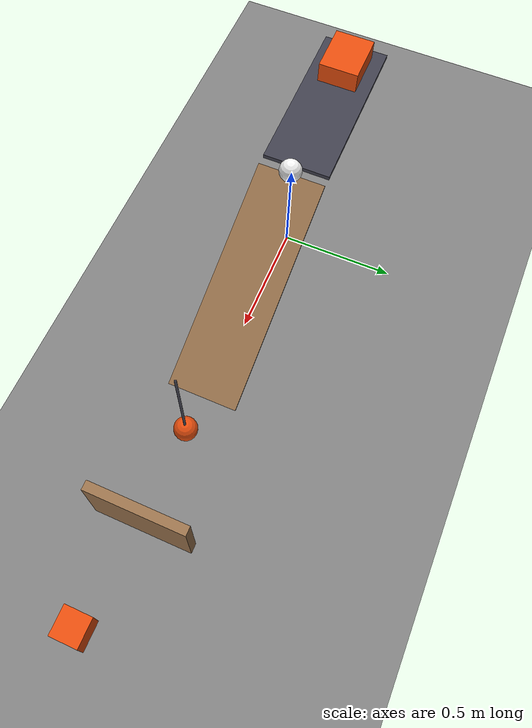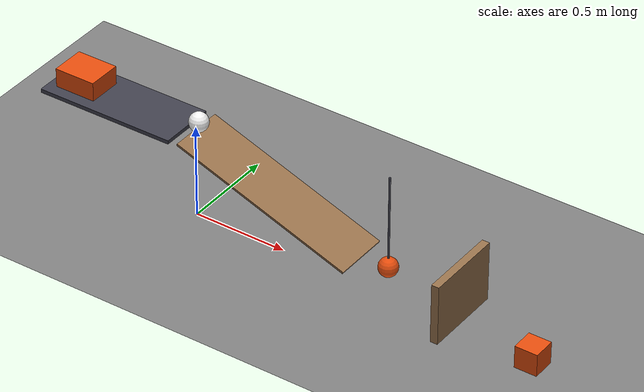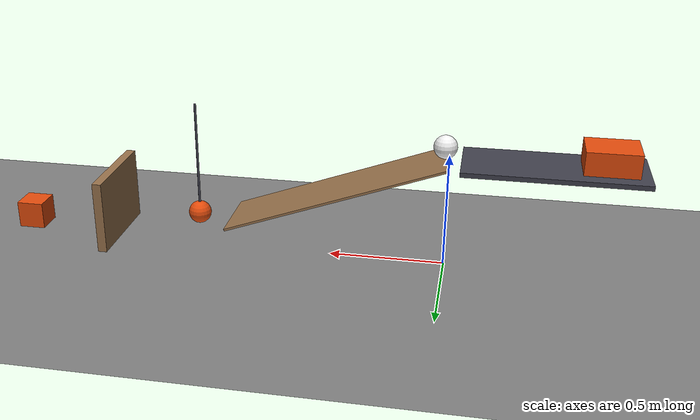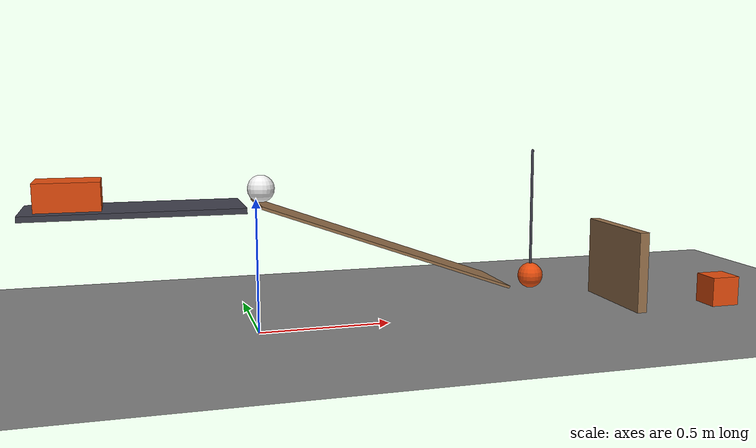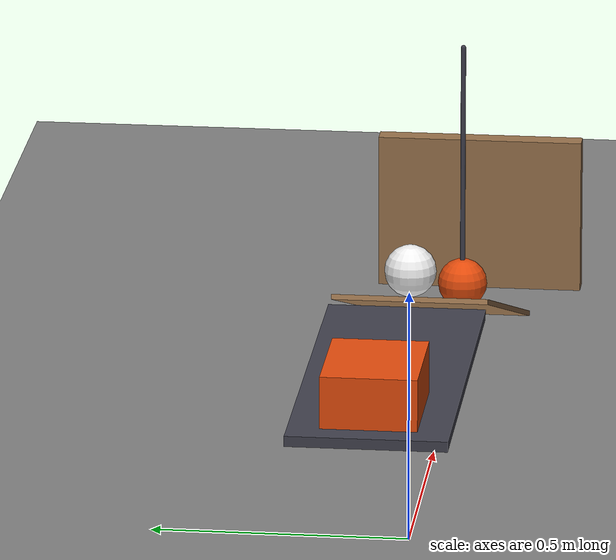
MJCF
<mujoco model="spring_chain_scaffold">
  <compiler angle="radian"/>
  <option timestep="0.002"/>
  <worldbody>
    <geom name="floor" type="plane" size="6 6 0.1" friction="0.68 0.005 0.0001"/>
    <body name="ramp1">
      <geom name="ramp1" type="box" pos="0.469847 0 0.316312" size="0.5 0.15 0.005" euler="0 0.349066 0" friction="0.68 0.005 0.0001" rgba="0.6 0.45 0.3 1"/>
    </body>
    <body name="cart support">
      <geom name="cart support" type="box" pos="-0.425 0 0.479006" size="0.375 0.15 0.01" friction="0.68 0.005 0.0001" rgba="0.25 0.25 0.3 1"/>
    </body>
    <body name="cart1" pos="-0.642899 0 0.539006">
      <freejoint/>
      <geom name="cart1" type="box" pos="0 0 0" size="0.11 0.09 0.05" mass="0.5" friction="0.68 0.005 0.0001" rgba="0.9 0.3 0.05 1"/>
    </body>
    <body name="ball1" pos="0.0188111 0 0.539005">
      <freejoint/>
      <geom name="ball1" type="sphere" pos="0 0 0" size="0.05" mass="0.2" condim="6" friction="0.68 0.005 0.0001" rgba="0.95 0.95 0.95 1"/>
    </body>
    <body name="pendulum1" pos="1.08969 0 0.655">
      <joint name="pendulum1_hinge" type="hinge" pos="0 0 0" axis="0 1 0" limited="true" range="-0.698132 0" damping="0.04"/>
      <geom name="pendulum1" type="sphere" pos="0 0 -0.5" size="0.05" mass="0.3" friction="0.68 0.005 0.0001" rgba="0.9 0.3 0.05 1"/>
      <geom name="pendulum rod" type="capsule" size="0.005" fromto="0 0 0 0 0 -0.45" mass="0.05" friction="0.68 0.005 0.0001" rgba="0.25 0.25 0.3 1"/>
    </body>
    <body name="door1" pos="1.48109 -0.21 0.18">
      <joint name="door1_hinge" type="hinge" pos="0 0 0" axis="0 0 1" limited="true" range="-1.22173 0" damping="0.04"/>
      <geom name="door1" type="box" pos="0 0.21 0" size="0.02 0.21 0.16" mass="0.45" friction="0.68 0.005 0.0001" rgba="0.6 0.45 0.3 1"/>
    </body>
    <body name="block1" pos="1.92 -0.068 0.06">
      <freejoint/>
      <geom name="block1" type="box" pos="0 0 0" size="0.06 0.06 0.06" mass="0.35" friction="0.68 0.005 0.0001" rgba="0.9 0.3 0.05 1"/>
    </body>
  </worldbody>
  <keyframe>
    <key name="start" qpos="-0.642899 0 0.539006 1 0 0 0 0.0188111 0 0.539005 1 0 0 0 0 0 1.92 -0.068 0.06 1 0 0 0" qvel="0 0 0 0 0 0 0 0 0 0 0 0 0 0 0 0 0 0 0 0"/>
  </keyframe>
</mujoco>
